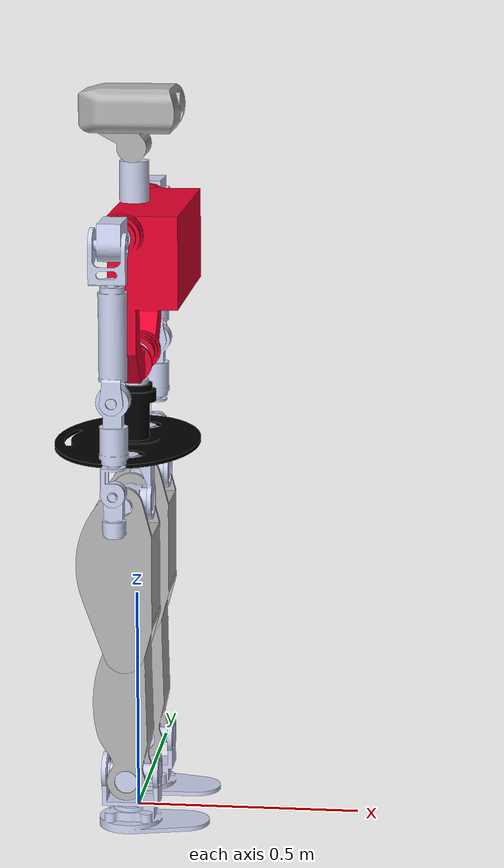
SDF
<?xml version="1.0"?>
<sdf version="1.7">
  <model name="TEO">

    <pose>0 0 0.845 0 -0 0</pose>

    <!-- ROOT -->

    <include merge="true">
      <uri>model://teo/parts/root.sdf</uri>
    </include>

    <joint name="AxialTrunk_adapter" type="fixed">
      <parent>RootWaist_links</parent>
      <child>AxialTrunk_link_adapter</child>
    </joint>

    <!-- TRUNK -->

    <include merge="true">
      <pose>0 0 0.1932 0 -0 0</pose>
      <uri>model://teo/parts/trunk.sdf</uri>
    </include>

    <!-- HEAD -->

    <include merge="true">
      <pose>0 0 0.6282 0 -0 0</pose>
      <uri>model://teo/parts/head.sdf</uri>
    </include>

    <joint name="AxialNeck_adapter" type="fixed">
      <parent>FrontalTrunk_link</parent>
      <child>AxialNeck_link_adapter</child>
    </joint>

    <!-- RIGHT ARM -->

    <include merge="true">
      <pose>0 -0.26292 0.4982 0 -0 0</pose>
      <uri>model://teo/parts/rightArm.sdf</uri>
    </include>

    <joint name="FrontalRightShoulder_adapter" type="fixed">
      <parent>FrontalTrunk_link</parent>
      <child>FrontalRightShoulder_link_adapter</child>
    </joint>

    <!-- LEFT ARM -->

    <include merge="true">
      <pose>0 0.26292 0.4982 0 -0 0</pose>
      <uri>model://teo/parts/leftArm.sdf</uri>
    </include>

    <joint name="FrontalLeftShoulder_adapter" type="fixed">
      <parent>FrontalTrunk_link</parent>
      <child>FrontalLeftShoulder_link_adapter</child>
    </joint>

    <!-- RIGHT LEG -->

    <include merge="true">
      <pose>0 -0.146 0 0 -0 0</pose>
      <uri>model://teo/parts/rightLeg.sdf</uri>
    </include>

    <joint name="AxialRightHip_adapter" type="fixed">
      <parent>RootWaist_links</parent>
      <child>AxialRightHip_link_adapter</child>
    </joint>

    <!-- LEFT LEG -->

    <include merge="true">
      <pose>0 0.146 0 0 -0 0</pose>
      <uri>model://teo/parts/leftLeg.sdf</uri>
    </include>

    <joint name="AxialLeftHip_adapter" type="fixed">
      <parent>RootWaist_links</parent>
      <child>AxialLeftHip_link_adapter</child>
    </joint>

    <plugin name="gz::sim::systems::SceneBroadcaster" filename="gz-sim-scene-broadcaster-system" />
    <plugin name="gz::sim::systems::Sensors" filename="gz-sim-sensors-system" />
    <plugin name="gz::sim::systems::ForceTorque" filename="gz-sim-forcetorque-system" />
    <plugin name="gz::sim::systems::Imu" filename="gz-sim-imu-system" />

    <plugin name="gzyarp::RobotInterface" filename="gz-sim-yarp-robotinterface-system">
      <yarpRobotInterfaceConfigurationFile>model://teo/conf/teo_nws_yarp.xml</yarpRobotInterfaceConfigurationFile>
    </plugin>

    <plugin name="gzyarp::RobotInterface" filename="gz-sim-yarp-robotinterface-system">
      <yarpRobotInterfaceConfigurationFile>model://teo/conf/teo_nws_ros2.xml</yarpRobotInterfaceConfigurationFile>
    </plugin>

  </model>
</sdf>
